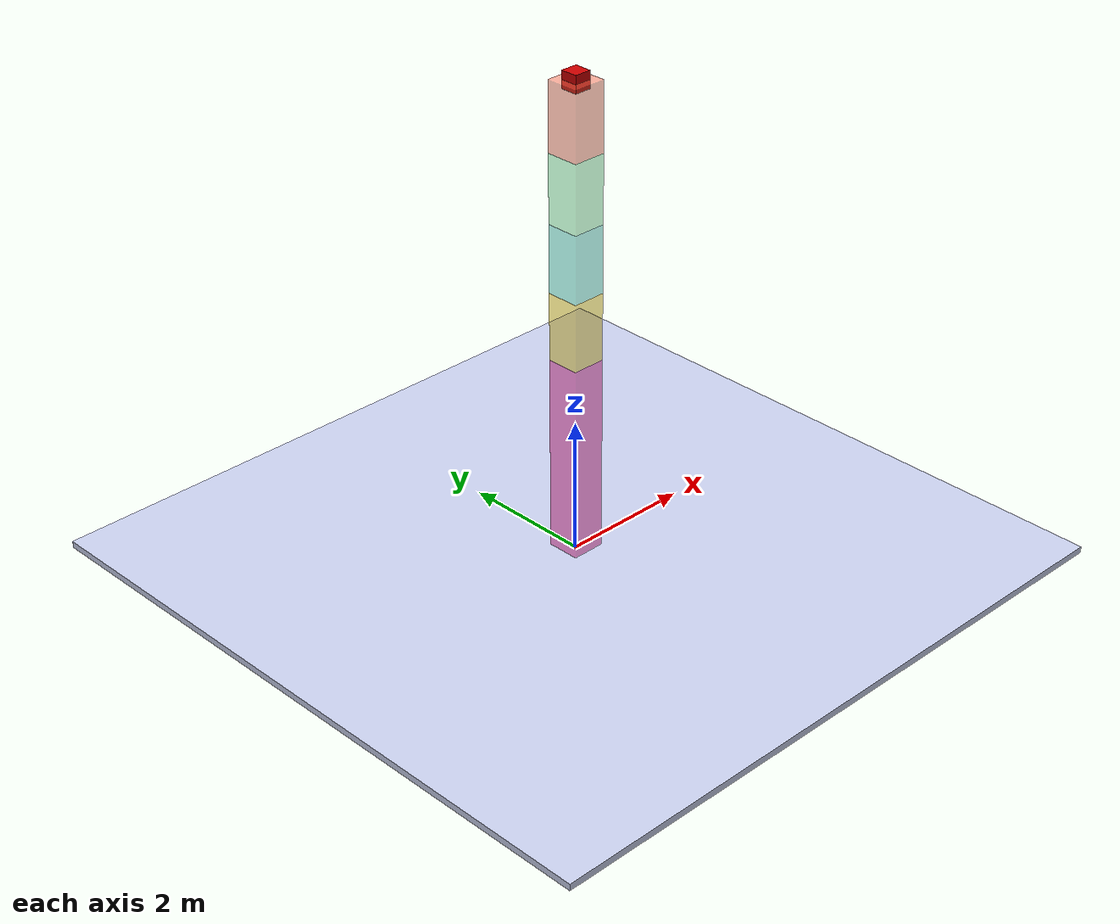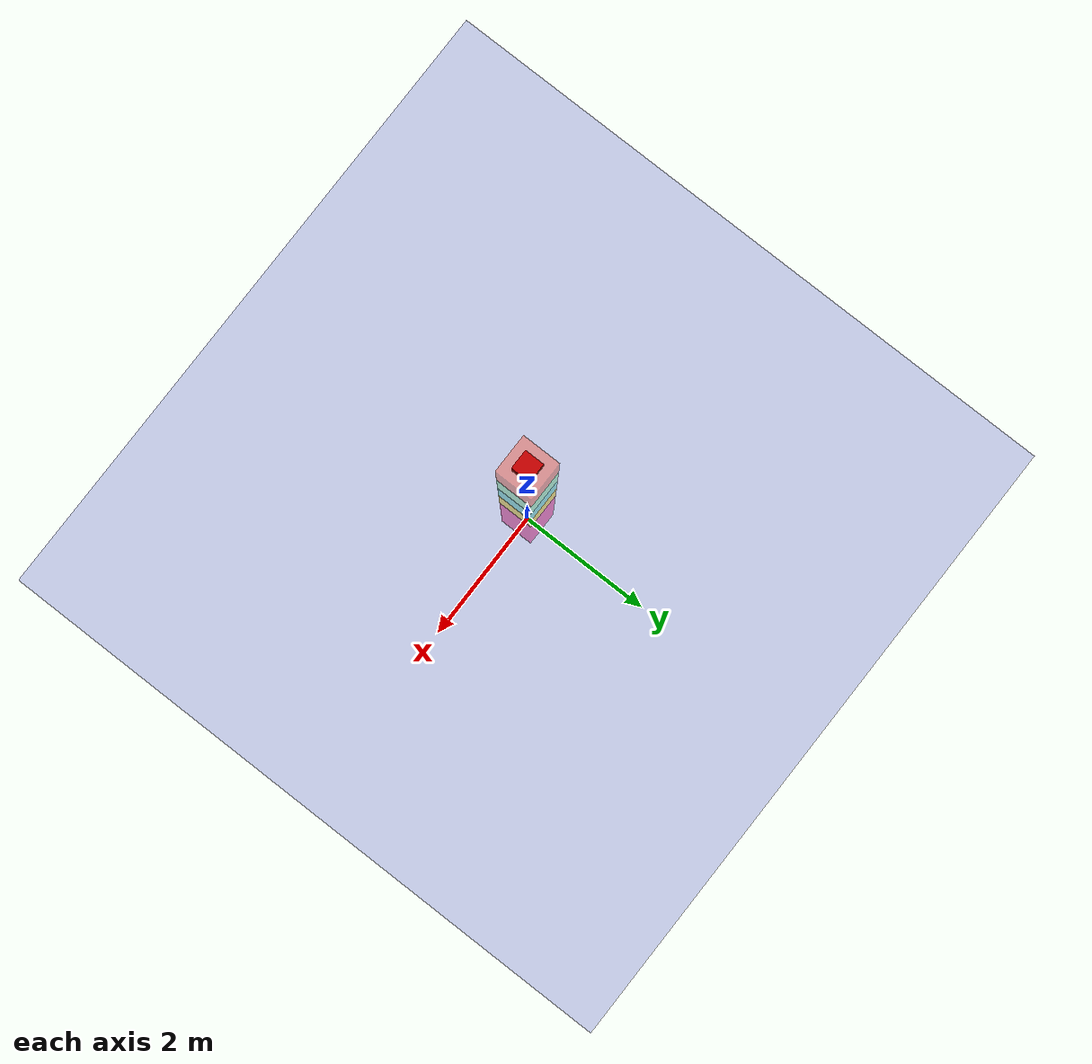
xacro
<?xml version = "1.0"?>
<robot name="car_model" xmlns:xacro="http://www.ros.org/wiki/xacro">

    <xacro:property name="arm_1_mass" value="3.0" />
    <xacro:property name="arm_1_a" value="0.5" />
    <xacro:property name="arm_1_b" value="0.5" />
    <xacro:property name="arm_1_c" value="3.0" />
    <xacro:property name="arm_2_mass" value="1.0" />
    <xacro:property name="arm_2_a" value="0.5" />
    <xacro:property name="arm_2_b" value="0.5" />
    <xacro:property name="arm_2_c" value="1" />
    <xacro:property name="arm_3_mass" value="1.0" />
    <xacro:property name="arm_3_a" value="0.5" />
    <xacro:property name="arm_3_b" value="0.5" />
    <xacro:property name="arm_3_c" value="1" />
    <xacro:property name="arm_4_mass" value="1.0" />
    <xacro:property name="arm_4_a" value="0.5" />
    <xacro:property name="arm_4_b" value="0.5" />
    <xacro:property name="arm_4_c" value="1" />
    <xacro:property name="arm_5_mass" value="1.0" />
    <xacro:property name="arm_5_a" value="0.5" />
    <xacro:property name="arm_5_b" value="0.5" />
    <xacro:property name="arm_5_c" value="1" />
    <xacro:property name="camera_width" value="0.25" />

    <!-- world_link -->
    <link name="base_link">
        <inertial>
            <origin xyz="0 0 0" rpy="0 0 0" />
            <mass value="100" />
            <inertia ixx="10" ixy="0.0" ixz="0.0" iyy="10" iyz="0.0" izz="10" />
        </inertial>
        <visual>
            <origin xyz="0 0 0" rpy="0 0 0" />
            <geometry>
                <box size="10 10 0.1" />
            </geometry>
            <material name="Grey">
                <color rgba="0.79216 0.81961 0.93333 1" />
            </material>
        </visual>
        <collision>
            <origin xyz="0 0 0" rpy="0 0 0" />
            <geometry>
                <box size="10 10 0.1" />
            </geometry>
        </collision>
    </link>

    <!-- arm1 -->
    <link name="arm_1">
        <collision>
            <origin
                xyz="0 0 ${arm_1_c / 2}"
                rpy="0 0 0" />
            <geometry>
                <box size="${arm_1_a} ${arm_1_b} ${arm_1_c}" />
            </geometry>
        </collision>
        <visual>
            <origin
                xyz="0 0 ${arm_1_c / 2}"
                rpy="0 0 0" />
            <geometry>
                <box size="${arm_1_a} ${arm_1_b} ${arm_1_c}" />
            </geometry>
            <material name="DeepPink" >
                <color rgba="1 0.0784 0.5764 0.5" />
            </material>
        </visual>
        <inertial>
            <origin
                xyz="0 0 ${arm_1_c / 2}"
                rpy="0 0 0" />
            <mass value="${arm_1_mass / 2}" />
            <inertia
                ixx="${arm_1_mass / 12.0 * (arm_1_b*arm_1_b + arm_1_c*arm_1_c)}"
                ixy="0.0"
                ixz="0.0"
                iyy="${arm_1_mass / 12.0 * (arm_1_a*arm_1_a + arm_1_c*arm_1_c)}"
                iyz="0.0"
                izz="${arm_1_mass / 12.0 * (arm_1_a*arm_1_a + arm_1_b*arm_1_b)}" />
        </inertial>
    </link>
    <joint name="joint_0_1" type="continuous">
        <axis xyz="0 0 1" rpy="0 0 0" />
        <parent link="base_link" />
        <child link="arm_1" />
        <origin xyz="0 0 0" rpy="0 0 0" />
        <limit effort="100" velocity="100" />
        <joint_properties damping="0" friction="0" />
    </joint>

    <!-- arm2 -->
    <link name="arm_2">
        <collision>
            <origin
                xyz="0 0 ${arm_2_c / 2}"
                rpy="0 0 0" />
            <geometry>
                <box size="${arm_2_a} ${arm_2_b} ${arm_2_c}" />
            </geometry>
        </collision>
        <visual>
            <origin
                xyz="0 0 ${arm_2_c / 2}"
                rpy="0 0 0" />
            <geometry>
                <box size="${arm_2_a} ${arm_2_b} ${arm_2_c}" />
            </geometry>
            <material name="Gold" >
                <color rgba="1 0.8431 0 0.5" />
            </material>
        </visual>
        <inertial>
            <origin
                xyz="0 0 ${arm_2_c}"
                rpy="0 0 0" />
            <mass value="${arm_2_mass / 2}" />
            <inertia
                ixx="${arm_2_mass / 12.0 * (arm_2_b*arm_2_b + arm_2_c*arm_2_c)}"
                ixy="0.0"
                ixz="0.0"
                iyy="${arm_2_mass / 12.0 * (arm_2_a*arm_2_a + arm_2_c*arm_2_c)}"
                iyz="0.0"
                izz="${arm_2_mass / 12.0 * (arm_2_a*arm_2_a + arm_2_b*arm_2_b)}" />
        </inertial>
    </link>
    <joint name="joint_1_2" type="continuous">
        <axis xyz="1 0 0" rpy="0 0 0" />
        <parent link="arm_1" />
        <child link="arm_2" />
        <origin xyz="0 0 ${arm_1_c}" rpy="0 0 0" />
        <limit effort="100" velocity="100" />
        <joint_properties damping="0" friction="0" />
    </joint>

    <!-- arm3 -->
    <link name="arm_3">
        <collision>
            <origin
                xyz="0 0 ${arm_3_c / 2}"
                rpy="0 0 0" />
            <geometry>
                <box size="${arm_3_a} ${arm_3_b} ${arm_3_c}" />
            </geometry>
        </collision>
        <visual>
            <origin
                xyz="0 0 ${arm_3_c / 2}"
                rpy="0 0 0" />
            <geometry>
                <box size="${arm_3_a} ${arm_3_b} ${arm_3_c}" />
            </geometry>
            <material name="Turquoise" >
                <color rgba="0.2509 0.8784 0.8156 0.5" />
            </material>
        </visual>
        <inertial>
            <origin
                xyz="0 0 ${arm_3_c}"
                rpy="0 0 0" />
            <mass value="${arm_3_mass / 2}" />
            <inertia
                ixx="${arm_3_mass / 12.0 * (arm_3_b*arm_3_b + arm_3_c*arm_3_c)}"
                ixy="0.0"
                ixz="0.0"
                iyy="${arm_3_mass / 12.0 * (arm_3_a*arm_3_a + arm_3_c*arm_3_c)}"
                iyz="0.0"
                izz="${arm_3_mass / 12.0 * (arm_3_a*arm_3_a + arm_3_b*arm_3_b)}" />
        </inertial>
    </link>
    <joint name="joint_2_3" type="continuous">
        <axis xyz="1 0 0" rpy="0 0 0" />
        <parent link="arm_2" />
        <child link="arm_3" />
        <origin xyz="0 0 ${arm_2_c}" rpy="0 0 0" />
        <limit effort="100" velocity="100" />
        <joint_properties damping="0" friction="0" />
    </joint>

    <!-- arm4 -->
    <link name="arm_4">
        <collision>
            <origin
                xyz="0 0 ${arm_4_c / 2}"
                rpy="0 0 0" />
            <geometry>
                <box size="${arm_4_a} ${arm_4_b} ${arm_4_c}" />
            </geometry>
        </collision>
        <visual>
            <origin
                xyz="0 0 ${arm_4_c / 2}"
                rpy="0 0 0" />
            <geometry>
                <box size="${arm_4_a} ${arm_4_b} ${arm_4_c}" />
            </geometry>
            <material name="Auqamarin" >
                <color rgba="0.4980 1 0.6666 0.5" />
            </material>
        </visual>
        <inertial>
            <origin
                xyz="0 0 ${arm_4_c}"
                rpy="0 0 0" />
            <mass value="${arm_4_mass / 2}" />
            <inertia
                ixx="${arm_4_mass / 12.0 * (arm_4_b*arm_4_b + arm_4_c*arm_4_c)}"
                ixy="0.0"
                ixz="0.0"
                iyy="${arm_4_mass / 12.0 * (arm_4_a*arm_4_a + arm_4_c*arm_4_c)}"
                iyz="0.0"
                izz="${arm_4_mass / 12.0 * (arm_4_a*arm_4_a + arm_4_b*arm_4_b)}" />
        </inertial>
    </link>
    <joint name="joint_3_4" type="continuous">
        <axis xyz="0 0 1" rpy="0 0 0" />
        <parent link="arm_3" />
        <child link="arm_4" />
        <origin xyz="0 0 ${arm_3_c}" rpy="0 0 0" />
        <limit effort="100" velocity="100" />
        <joint_properties damping="0" friction="0" />
    </joint>

    <!-- arm5 -->
    <link name="arm_5">
        <collision>
            <origin
                xyz="0 0 ${arm_5_c / 2}"
                rpy="0 0 0" />
            <geometry>
                <box size="${arm_5_a} ${arm_5_b} ${arm_5_c}" />
            </geometry>
        </collision>
        <visual>
            <origin
                xyz="0 0 ${arm_5_c / 2}"
                rpy="0 0 0" />
            <geometry>
                <box size="${arm_5_a} ${arm_5_b} ${arm_5_c}" />
            </geometry>
            <material name="Tomato" >
                <color rgba="1 0.3882 0.2784 0.5" />
            </material>
        </visual>
        <inertial>
            <origin
                xyz="0 0 ${arm_5_c}"
                rpy="0 0 0" />
            <mass value="${arm_5_mass / 2}" />
            <inertia
                ixx="${arm_5_mass / 12.0 * (arm_5_b*arm_5_b + arm_5_c*arm_5_c)}"
                ixy="0.0"
                ixz="0.0"
                iyy="${arm_5_mass / 12.0 * (arm_5_a*arm_5_a + arm_5_c*arm_5_c)}"
                iyz="0.0"
                izz="${arm_5_mass / 12.0 * (arm_5_a*arm_5_a + arm_5_b*arm_5_b)}" />
        </inertial>
    </link>
    <joint name="joint_4_5" type="continuous">
        <axis xyz="1 0 0" rpy="0 0 0" />
        <parent link="arm_4" />
        <child link="arm_5" />
        <origin xyz="0 0 ${arm_4_c}" rpy="0 0 0" />
        <limit effort="100" velocity="100" />
        <joint_properties damping="0" friction="0" />
    </joint>

    <!-- camera -->
    <link name="camera_link">
        <collision>
            <origin
                xyz="0 0 ${arm_5_c}"
                rpy="0 0 0" />
            <geometry>
	            <box size="${camera_width} ${camera_width} ${camera_width}"/>
            </geometry>
        </collision>
        <visual>
            <origin
                xyz="0 0 ${arm_5_c}"
                rpy="0 0 0" />
            <geometry>
	            <box size="${camera_width} ${camera_width} ${camera_width}"/>
            </geometry>
            <material name="red">
                <color rgba="0.8 0 0 1"/>
            </material>
        </visual>
        <inertial>
            <origin
                xyz="0 0 ${arm_5_c}"
                rpy="0 0 0"/>
            <mass value="1.0" />
            <inertia
                ixx="1.0"
                ixy="0"
                ixz="0"
                iyy="1.0"
                iyz="0"
                izz="1.0" />
        </inertial>
    </link>
    <joint name="joint_camera_link" type="fixed">
        <axis xyz="1 0 0" rpy="0 0 0" />
        <origin xyz="0 0 0" rpy="0 0 0"/>
        <parent link="arm_5"/>
        <child link="camera_link"/>
    </joint>

    <!-- gazebo reference -->
    <gazebo reference="arm_1">
        <mu1>0.2</mu1>
        <mu2>0.2</mu2>
        <material>Gazebo/Green</material>
    </gazebo>
    <gazebo reference="arm_2">
        <mu1>0.2</mu1>
        <mu2>0.2</mu2>
        <material>Gazebo/Yellow</material>
    </gazebo>
    <gazebo reference="arm_3">
        <mu1>0.2</mu1>
        <mu2>0.2</mu2>
        <material>Gazebo/Orange</material>
    </gazebo>
    <gazebo reference="arm_4">
        <mu1>0.2</mu1>
        <mu2>0.2</mu2>
        <material>Gazebo/Yellow</material>
    </gazebo>
    <gazebo reference="arm_5">
        <mu1>0.2</mu1>
        <mu2>0.2</mu2>
        <material>Gazebo/Green</material>
    </gazebo>
    <gazebo reference="camera_link">
        <mu1>0.2</mu1>
        <mu2>0.2</mu2>
        <material>Gazebo/Red</material>
    </gazebo>

    <!-- transmission -->
    <transmission name="tran_0_1">
        <type>transmission_interface/SimpleTransmission</type>
        <joint name="joint_0_1">
            <hardwareInterface>hardware_interface/EffortJointInterface</hardwareInterface>
        </joint>
        <actuator name="motor_0_1">
            <hardwareInterface>hardware_interface/EffortJointInterface</hardwareInterface>
            <mechanicalReduction>1</mechanicalReduction>
            <motorTorqueConstant>1</motorTorqueConstant>
        </actuator>
    </transmission>
    <transmission name="tran_1_2">
        <type>transmission_interface/SimpleTransmission</type>
        <joint name="joint_1_2">
            <hardwareInterface>hardware_interface/EffortJointInterface</hardwareInterface>
        </joint>
        <actuator name="motor_1_2">
            <hardwareInterface>hardware_interface/EffortJointInterface</hardwareInterface>
            <mechanicalReduction>1</mechanicalReduction>
            <motorTorqueConstant>1</motorTorqueConstant>
        </actuator>
    </transmission>
    <transmission name="tran_2_3">
        <type>transmission_interface/SimpleTransmission</type>
        <joint name="joint_2_3">
            <hardwareInterface>hardware_interface/EffortJointInterface</hardwareInterface>
        </joint>
        <actuator name="motor_2_3">
            <hardwareInterface>hardware_interface/EffortJointInterface</hardwareInterface>
            <mechanicalReduction>1</mechanicalReduction>
            <motorTorqueConstant>1</motorTorqueConstant>
        </actuator>
    </transmission>
    <transmission name="tran_3_4">
        <type>transmission_interface/SimpleTransmission</type>
        <joint name="joint_3_4">
            <hardwareInterface>hardware_interface/EffortJointInterface</hardwareInterface>
        </joint>
        <actuator name="motor_3_4">
            <hardwareInterface>hardware_interface/EffortJointInterface</hardwareInterface>
            <mechanicalReduction>1</mechanicalReduction>
            <motorTorqueConstant>1</motorTorqueConstant>
        </actuator>
    </transmission>
    <transmission name="tran_4_5">
        <type>transmission_interface/SimpleTransmission</type>
        <joint name="joint_4_5">
            <hardwareInterface>hardware_interface/EffortJointInterface</hardwareInterface>
        </joint>
        <actuator name="motor_4_5">
            <hardwareInterface>hardware_interface/EffortJointInterface</hardwareInterface>
            <mechanicalReduction>1</mechanicalReduction>
            <motorTorqueConstant>1</motorTorqueConstant>
        </actuator>
    </transmission>

    <gazebo reference="camera_link">
        <sensor type="camera" name="camera1">
            <update_rate>30.0</update_rate>
            <camera name="head">
                <horizontal_fov>1.3962634</horizontal_fov>
                <image>
                    <width>800</width>
                    <height>800</height>
                    <format>R8G8B8</format>
                </image>
                <clip>
                    <near>0.02</near>
                    <far>300</far>
                </clip>
                <noise>
                    <type>gaussian</type>
                    <mean>0.0</mean>
                    <stddev>0.007</stddev>
                </noise>
            </camera>
            <plugin name="camera_controller"
                filename="libgazebo_ros_camera.so">
                <alwaysOn>true</alwaysOn>
                <updateRate>0.0</updateRate>
                <cameraName>rrbot/camera1</cameraName>
                <imageTopicName>image_raw</imageTopicName>
                <cameraInfoTopicName>camera_info</cameraInfoTopicName>
                <frameName>camera_link_optical</frameName>
                <hackBaseline>0.0</hackBaseline>
                <distortionK1>0.0</distortionK1>
                <distortionK2>0.0</distortionK2>
                <distortionK3>0.0</distortionK3>
                <distortionT1>0.0</distortionT1>
                <distortionT2>0.0</distortionT2>
                <CxPrime>0</CxPrime>
                <Cx>0.0</Cx>
                <Cy>0.0</Cy>
                <focalLength>0.0</focalLength>
            </plugin>
        </sensor>
    </gazebo>

    <gazebo>
        <plugin name="gazebo_ros_control"
            filename="libgazebo_ros_control.so">
            <robotNamespace>/arm_model</robotNamespace>
            <robotSimType>gazebo_ros_control/DefaultRobotHWSim</robotSimType>
            <legacyModeNS>true</legacyModeNS>
        </plugin>
    </gazebo>

</robot>
